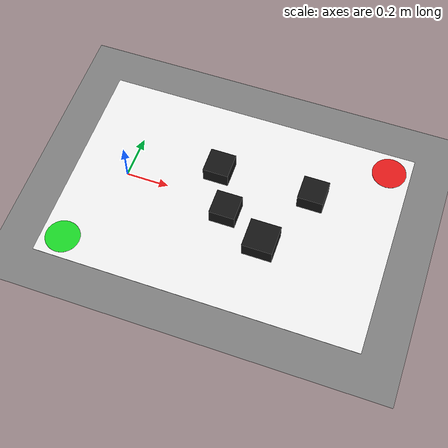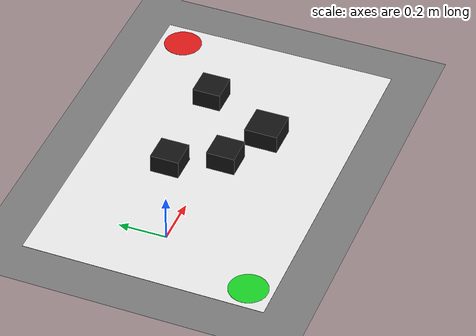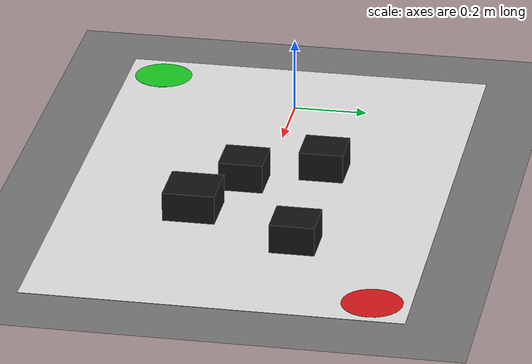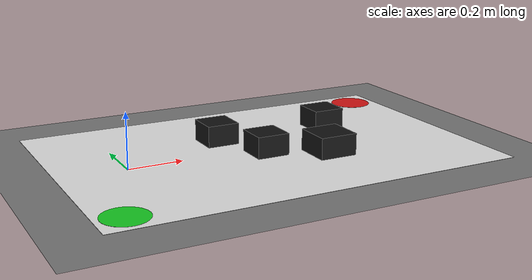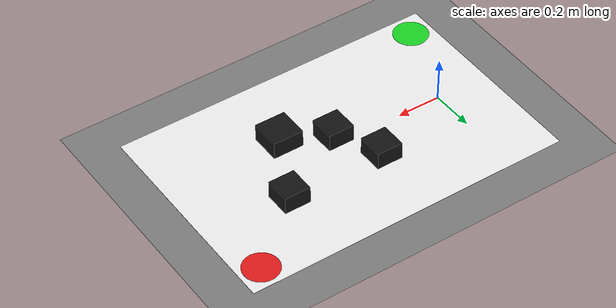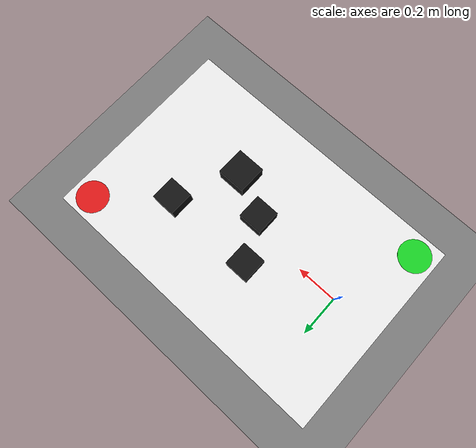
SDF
<sdf version="1.6">
 <world name="chartpaper_arena">
  <plugin name="gazebo_ros_state" filename="libgazebo_ros_state.so">
   <ros><namespace>/</namespace></ros>
   <update_rate>50.0</update_rate>
  </plugin>
  <light type="directional" name="sun">
   <pose>0 0 10 0 0 0</pose>
   <diffuse>0.8 0.8 0.8 1</diffuse>
   <specular>0.2 0.2 0.2 1</specular>
   <attenuation>
    <range>1000</range>
    <constant>0.9</constant>
    <linear>0.01</linear>
    <quadratic>0.001</quadratic>
   </attenuation>
   <direction>-0.5 0.1 -0.9</direction>
  </light>
  <model name="ground_plane">
   <static>true</static>
   <link name="link">
    <collision name="collision">
     <geometry><plane><normal>0 0 1</normal><size>100 100</size></plane></geometry>
     <surface>
      <friction><ode><mu>0.85</mu><mu2>0.85</mu2></ode></friction>
      <contact><ode><kp>100000.0</kp><kd>10.0</kd><min_depth>0.001</min_depth></ode></contact>
     </surface>
    </collision>
    <visual name="visual">
     <cast_shadows>false</cast_shadows>
     <geometry><plane><normal>0 0 1</normal><size>100 100</size></plane></geometry>
     <material><ambient>0.5 0.5 0.5 1</ambient><diffuse>0.5 0.5 0.5 1</diffuse></material>
    </visual>
   </link>
  </model>
  <model name="white_chart_paper">
   <static>true</static>
   <pose>0.5 0.0 0.0005 0 0 0</pose>
   <link name="paper_link">
    <visual name="paper_visual">
     <geometry><box><size>1.5 1.0 0.001</size></box></geometry>
     <material>
      <ambient>0.95 0.95 0.95 1.0</ambient>
      <diffuse>0.95 0.95 0.95 1.0</diffuse>
      <specular>0.1 0.1 0.1 1.0</specular>
     </material>
    </visual>
   </link>
  </model>
  <model name="obstacle_box_1">
   <static>true</static>
   <pose>0.4 0.15 0.04 0 0 0</pose>
   <link name="link">
    <collision name="col"><geometry><box><size>0.12 0.12 0.08</size></box></geometry></collision>
    <visual name="vis">
     <geometry><box><size>0.12 0.12 0.08</size></box></geometry>
     <material><ambient>0.08 0.08 0.08 1.0</ambient><diffuse>0.08 0.08 0.08 1.0</diffuse></material>
    </visual>
   </link>
  </model>
  <model name="obstacle_box_2">
   <static>true</static>
   <pose>0.7 -0.15 0.04 0 0 0</pose>
   <link name="link">
    <collision name="col"><geometry><box><size>0.14 0.14 0.08</size></box></geometry></collision>
    <visual name="vis">
     <geometry><box><size>0.14 0.14 0.08</size></box></geometry>
     <material><ambient>0.08 0.08 0.08 1.0</ambient><diffuse>0.08 0.08 0.08 1.0</diffuse></material>
    </visual>
   </link>
  </model>
  <model name="obstacle_box_3">
   <static>true</static>
   <pose>0.85 0.15 0.04 0 0 0</pose>
   <link name="link">
    <collision name="col"><geometry><box><size>0.12 0.12 0.08</size></box></geometry></collision>
    <visual name="vis">
     <geometry><box><size>0.12 0.12 0.08</size></box></geometry>
     <material><ambient>0.08 0.08 0.08 1.0</ambient><diffuse>0.08 0.08 0.08 1.0</diffuse></material>
    </visual>
   </link>
  </model>
  <model name="obstacle_box_4">
   <static>true</static>
   <pose>0.85 0.15 0.04 0 0 0</pose>
   <link name="link">
    <collision name="col"><geometry><box><size>0.12 0.12 0.08</size></box></geometry></collision>
    <visual name="vis">
     <geometry><box><size>0.12 0.12 0.08</size></box></geometry>
     <material><ambient>0.08 0.08 0.08 1.0</ambient><diffuse>0.08 0.08 0.08 1.0</diffuse></material>
    </visual>
   </link>
  </model>
  <model name="obstacle_box_5">
   <static>true</static>
   <pose>0.50 -0.05 0.04 0 0 0</pose>
   <link name="link">
    <collision name="col"><geometry><box><size>0.12 0.12 0.08</size></box></geometry></collision>
    <visual name="vis">
     <geometry><box><size>0.12 0.12 0.08</size></box></geometry>
     <material><ambient>0.08 0.08 0.08 1.0</ambient><diffuse>0.08 0.08 0.08 1.0</diffuse></material>
    </visual>
   </link>
  </model>
  <model name="start_marker">
   <static>true</static>
   <pose>-0.15 -0.40 0.0012 0 0 0</pose>
   <link name="link">
    <collision name="col">
     <geometry><cylinder><radius>0.08</radius><length>0.001</length></cylinder></geometry>
     <surface><collide_without_contact>true</collide_without_contact></surface>
    </collision>
    <visual name="vis">
     <geometry><cylinder><radius>0.08</radius><length>0.0005</length></cylinder></geometry>
     <material><ambient>0.1 0.85 0.15 1.0</ambient><diffuse>0.1 0.85 0.15 1.0</diffuse></material>
    </visual>
   </link>
  </model>
  <model name="goal_marker">
   <static>true</static>
   <pose>1.15 0.40 0.0012 0 0 0</pose>
   <link name="link">
    <collision name="col">
     <geometry><cylinder><radius>0.08</radius><length>0.001</length></cylinder></geometry>
     <surface><collide_without_contact>true</collide_without_contact></surface>
    </collision>
    <visual name="vis">
     <geometry><cylinder><radius>0.08</radius><length>0.0005</length></cylinder></geometry>
     <material><ambient>0.9 0.1 0.1 1.0</ambient><diffuse>0.9 0.1 0.1 1.0</diffuse></material>
    </visual>
   </link>
  </model>
  <model name="overhead_camera">
   <static>true</static>
   <pose>0.5 0.0 2.0 0 1.5707963 0</pose>
   <link name="camera_link">
    <sensor type="camera" name="top_down_camera">
     <always_on>true</always_on>
     <update_rate>30.0</update_rate>
     <camera>
      <horizontal_fov>1.15</horizontal_fov>
      <image><width>1280</width><height>960</height><format>R8G8B8</format></image>
      <clip><near>0.1</near><far>10.0</far></clip>
     </camera>
     <plugin name="camera_controller" filename="libgazebo_ros_camera.so">
      <ros>
       <namespace>/</namespace>
       <remapping>image_raw:=overhead_camera/image_raw</remapping>
       <remapping>camera_info:=overhead_camera/camera_info</remapping>
      </ros>
      <frame_name>overhead_camera_optical_frame</frame_name>
     </plugin>
    </sensor>
   </link>
  </model>
  <physics type="ode">
   <real_time_update_rate>500.0</real_time_update_rate>
   <max_step_size>0.002</max_step_size>
   <ode>
    <solver><type>quick</type><iters>50</iters><sor>1.3</sor></solver>
    <constraints>
     <cfm>0.00001</cfm>
     <erp>0.2</erp>
     <contact_max_correcting_vel>2.0</contact_max_correcting_vel>
     <contact_surface_layer>0.001</contact_surface_layer>
    </constraints>
   </ode>
  </physics>
 </world>
</sdf>
